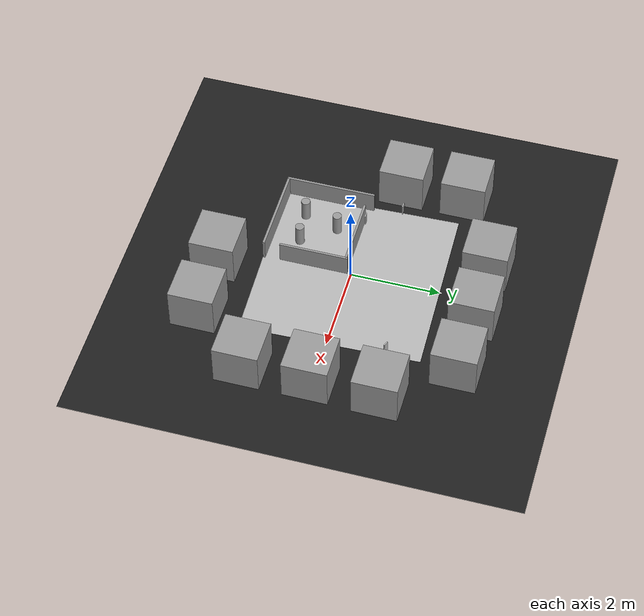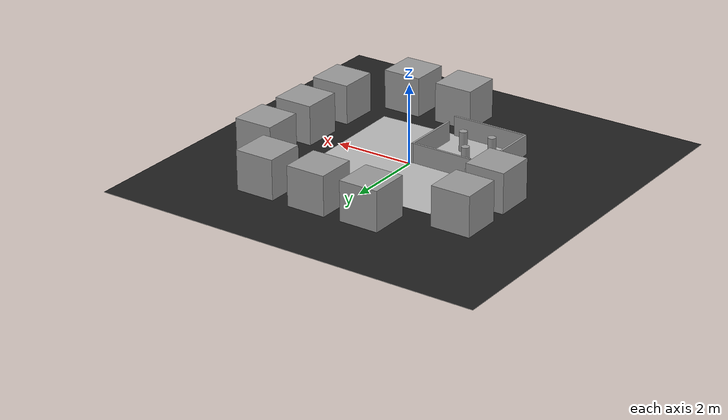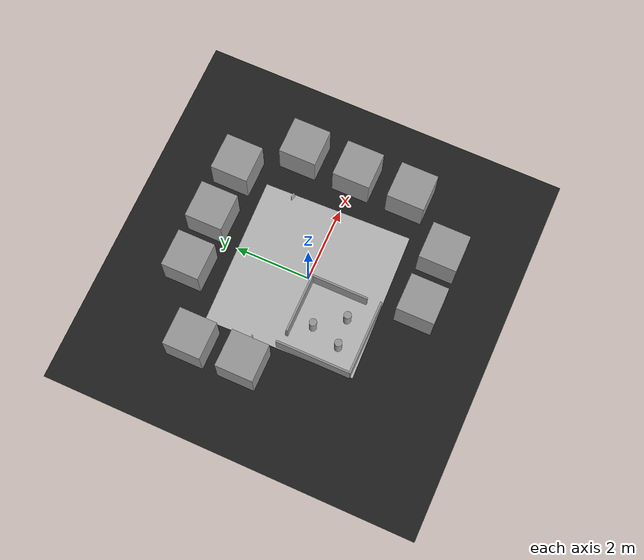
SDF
<sdf version="1.7">
 <world name="default">
  <scene>
   <ambient>0 0 0 1</ambient>
   <shadows>0</shadows>
   <grid>0</grid>
   <background>0.7 0.7 0.7 1</background>
  </scene>
  <model name="course">
   <static>1</static>
   <link name="course_link">
    <collision name="course_collision">
     <geometry><plane><normal>0 0 1</normal><size>4 4</size></plane></geometry>
     <surface><friction><ode><mu>100</mu><mu2>50</mu2></ode></friction></surface>
    </collision>
    <visual name="course_visual">
     <cast_shadows>0</cast_shadows>
     <geometry><plane><normal>0 0 1</normal><size>4 4</size></plane></geometry>
     <material>
      <script>
       <uri>model://turtlebot3_autorace/course/materials/scripts</uri>
       <uri>model://turtlebot3_autorace/course/materials/textures</uri>
       <name>course</name>
      </script>
     </material>
    </visual>
   </link>
   <pose>0 0 0 0 0 -1.54</pose>
  </model>
  <model name="traffic_parking">
   <static>1</static>
   <link name="box">
    <collision name="collision"><geometry><box><size>0.12 0.025 0.25</size></box></geometry></collision>
    <visual name="visual">
     <geometry><box><size>0.12 0.025 0.25</size></box></geometry>
     <material>
      <script>
       <uri>model://turtlebot3_autorace/traffic_parking/materials/scripts</uri>
       <uri>model://turtlebot3_autorace/traffic_parking/materials/textures</uri>
       <name>traffic_parking</name>
      </script>
     </material>
    </visual>
   </link>
   <pose>1.84 1.27 0.13 0 0 -0.356</pose>
  </model>
  <model name="traffic_tunnel">
   <pose>-1.544 -0.08 0.125 1e-06 2e-06 1.2e-05</pose>
   <link name="box">
    <collision name="collision"><geometry><box><size>0.12 0.025 0.25</size></box></geometry></collision>
    <visual name="visual">
     <geometry><box><size>0.12 0.025 0.25</size></box></geometry>
     <material>
      <script>
       <uri>model://turtlebot3_autorace/traffic_tunnel/materials/scripts</uri>
       <uri>model://turtlebot3_autorace/traffic_tunnel/materials/textures</uri>
       <name>traffic_tunnel</name>
      </script>
     </material>
    </visual>
    <inertial>
     <inertia><ixx>1</ixx><ixy>0</ixy><ixz>0</ixz><iyy>1</iyy><iyz>0</iyz><izz>1</izz></inertia>
     <mass>1</mass>
    </inertial>
   </link>
  </model>
  <model name="traffic_stop">
   <static>1</static>
   <link name="box">
    <collision name="collision"><geometry><box><size>0.12 0.025 0.25</size></box></geometry></collision>
    <visual name="visual">
     <geometry><box><size>0.12 0.025 0.25</size></box></geometry>
     <material>
      <script>
       <uri>model://turtlebot3_autorace/traffic_stop/materials/scripts</uri>
       <uri>model://turtlebot3_autorace/traffic_stop/materials/textures</uri>
       <name>traffic_stop</name>
      </script>
     </material>
    </visual>
   </link>
   <pose>-2.05 0.65 0.125 0 -0 0</pose>
  </model>
  <light name="sun" type="directional">
   <pose>0 0 10 0 -0 0</pose>
   <diffuse>0.8 0.8 0.8 1</diffuse>
   <specular>0.1 0.1 0.1 1</specular>
   <attenuation>
    <range>1000</range>
    <constant>0.9</constant>
    <linear>0.01</linear>
    <quadratic>0.001</quadratic>
   </attenuation>
   <direction>-0.5 0.5 -1</direction>
   <spot><inner_angle>0</inner_angle><outer_angle>0</outer_angle><falloff>0</falloff></spot>
  </light>
  <model name="ground2">
   <pose>0 0 -0.1 0 -0 0</pose>
   <static>1</static>
   <link name="ground">
    <collision name="ground_coll"><geometry><box><size>8 8 0.01</size></box></geometry></collision>
    <visual name="ground_vis">
     <geometry><box><size>10 10 0.01</size></box></geometry>
     <material>
      <script><uri>file://media/materials/scripts/gazebo.material</uri><name>Gazebo/FlatBlack</name></script>
     </material>
    </visual>
   </link>
  </model>
  <gravity>0 0 -9.8</gravity>
  <magnetic_field>6e-06 2.3e-05 -4.2e-05</magnetic_field>
  <atmosphere type="adiabatic"/>
  <physics name="default_physics" default="0" type="ode">
   <max_step_size>0.001</max_step_size>
   <real_time_factor>1</real_time_factor>
   <real_time_update_rate>1000</real_time_update_rate>
  </physics>
  <spherical_coordinates>
   <surface_model>EARTH_WGS84</surface_model>
   <latitude_deg>0</latitude_deg>
   <longitude_deg>0</longitude_deg>
   <elevation>0</elevation>
   <heading_deg>0</heading_deg>
  </spherical_coordinates>
  <light name="user_point_light_2" type="point">
   <pose>-0.948146 0.604519 1 0 -0 0</pose>
   <diffuse>0.5 0.5 0.5 1</diffuse>
   <specular>0.1 0.1 0.1 1</specular>
   <attenuation>
    <range>20</range>
    <constant>0.5</constant>
    <linear>0.01</linear>
    <quadratic>0.001</quadratic>
   </attenuation>
   <cast_shadows>0</cast_shadows>
   <direction>0 0 -1</direction>
   <spot><inner_angle>0</inner_angle><outer_angle>0</outer_angle><falloff>0</falloff></spot>
  </light>
  <light name="user_point_light_6" type="point">
   <pose>1.63854 1.69565 1 0 -0 0</pose>
   <diffuse>0.5 0.5 0.5 1</diffuse>
   <specular>0.1 0.1 0.1 1</specular>
   <attenuation>
    <range>20</range>
    <constant>0.5</constant>
    <linear>0.01</linear>
    <quadratic>0.001</quadratic>
   </attenuation>
   <cast_shadows>0</cast_shadows>
   <direction>0 0 -1</direction>
   <spot><inner_angle>0</inner_angle><outer_angle>0</outer_angle><falloff>0</falloff></spot>
  </light>
  <light name="user_point_light_7" type="point">
   <pose>0.42 -3.31 1 0 -0 0</pose>
   <diffuse>0.5 0.5 0.5 1</diffuse>
   <specular>0.1 0.1 0.1 1</specular>
   <attenuation>
    <range>20</range>
    <constant>0.5</constant>
    <linear>0.01</linear>
    <quadratic>0.001</quadratic>
   </attenuation>
   <cast_shadows>0</cast_shadows>
   <direction>0 0 -1</direction>
   <spot><inner_angle>0</inner_angle><outer_angle>0</outer_angle><falloff>0</falloff></spot>
  </light>
  <light name="user_point_light_8" type="point">
   <pose>-1.8 1.5 1 0 -0 0</pose>
   <diffuse>0.5 0.5 0.5 1</diffuse>
   <specular>0.1 0.1 0.1 1</specular>
   <attenuation>
    <range>20</range>
    <constant>0.5</constant>
    <linear>0.01</linear>
    <quadratic>0.001</quadratic>
   </attenuation>
   <cast_shadows>0</cast_shadows>
   <direction>0 0 -1</direction>
   <spot><inner_angle>0</inner_angle><outer_angle>0</outer_angle><falloff>0</falloff></spot>
  </light>
  <model name="tunnel_wall_3">
   <link name="Wall_12">
    <pose>-0.980783 0.049883 0 0 -0 1.5708</pose>
    <visual name="Wall_12_Visual">
     <pose>0 0 0.25 0 -0 0</pose>
     <geometry><box><size>2 0.05 0.5</size></box></geometry>
     <material>
      <script><uri>file://media/materials/scripts/gazebo.material</uri><name>Gazebo/Grey</name></script>
      <ambient>1 1 1 1</ambient>
      <diffuse>0.7 0.7 0.7 1</diffuse>
      <specular>0.01 0.01 0.01 1</specular>
      <emissive>0 0 0 1</emissive>
     </material>
    </visual>
    <collision name="Wall_12_Collision">
     <pose>0 0 0.25 0 -0 0</pose>
     <geometry><box><size>2 0.05 0.5</size></box></geometry>
     <surface>
      <friction>
       <ode><mu>1</mu><mu2>1</mu2><fdir1>0 0 0</fdir1><slip1>0</slip1><slip2>0</slip2></ode>
       <torsional>
        <coefficient>1</coefficient>
        <patch_radius>0</patch_radius>
        <surface_radius>0</surface_radius>
        <use_patch_radius>1</use_patch_radius>
        <ode><slip>0</slip></ode>
       </torsional>
      </friction>
      <bounce><restitution_coefficient>0</restitution_coefficient><threshold>1e+06</threshold></bounce>
      <contact>
       <collide_without_contact>0</collide_without_contact>
       <collide_without_contact_bitmask>1</collide_without_contact_bitmask>
       <collide_bitmask>1</collide_bitmask>
       <ode>
        <soft_cfm>0</soft_cfm>
        <soft_erp>0.2</soft_erp>
        <kp>1e+13</kp>
        <kd>1</kd>
        <max_vel>0.01</max_vel>
        <min_depth>0</min_depth>
       </ode>
       <bullet>
        <split_impulse>1</split_impulse>
        <split_impulse_penetration_threshold>-0.01</split_impulse_penetration_threshold>
        <soft_cfm>0</soft_cfm>
        <soft_erp>0.2</soft_erp>
        <kp>1e+13</kp>
        <kd>1</kd>
       </bullet>
      </contact>
     </surface>
    </collision>
   </link>
   <link name="Wall_14">
    <pose>0 -0.935438 0 0 -0 0</pose>
    <visual name="Wall_14_Visual">
     <pose>0 0 0.25 0 -0 0</pose>
     <geometry><box><size>2.00003 0.05 0.5</size></box></geometry>
     <material>
      <script><uri>file://media/materials/scripts/gazebo.material</uri><name>Gazebo/Grey</name></script>
      <ambient>1 1 1 1</ambient>
      <diffuse>0.7 0.7 0.7 1</diffuse>
      <specular>0.01 0.01 0.01 1</specular>
      <emissive>0 0 0 1</emissive>
     </material>
    </visual>
    <collision name="Wall_14_Collision">
     <pose>0 0 0.25 0 -0 0</pose>
     <geometry><box><size>2.00003 0.05 0.5</size></box></geometry>
     <surface>
      <friction>
       <ode><mu>1</mu><mu2>1</mu2><fdir1>0 0 0</fdir1><slip1>0</slip1><slip2>0</slip2></ode>
       <torsional>
        <coefficient>1</coefficient>
        <patch_radius>0</patch_radius>
        <surface_radius>0</surface_radius>
        <use_patch_radius>1</use_patch_radius>
        <ode><slip>0</slip></ode>
       </torsional>
      </friction>
      <bounce><restitution_coefficient>0</restitution_coefficient><threshold>1e+06</threshold></bounce>
      <contact>
       <collide_without_contact>0</collide_without_contact>
       <collide_without_contact_bitmask>1</collide_without_contact_bitmask>
       <collide_bitmask>1</collide_bitmask>
       <ode>
        <soft_cfm>0</soft_cfm>
        <soft_erp>0.2</soft_erp>
        <kp>1e+13</kp>
        <kd>1</kd>
        <max_vel>0.01</max_vel>
        <min_depth>0</min_depth>
       </ode>
       <bullet>
        <split_impulse>1</split_impulse>
        <split_impulse_penetration_threshold>-0.01</split_impulse_penetration_threshold>
        <soft_cfm>0</soft_cfm>
        <soft_erp>0.2</soft_erp>
        <kp>1e+13</kp>
        <kd>1</kd>
       </bullet>
      </contact>
     </surface>
    </collision>
   </link>
   <link name="Wall_16">
    <pose>0.943396 0.183669 0 0 -0 1.5708</pose>
    <inertial>
     <inertia><ixx>nan</ixx><ixy>0</ixy><ixz>0</ixz><iyy>nan</iyy><iyz>0</iyz><izz>nan</izz></inertia>
     <mass>0</mass>
    </inertial>
    <visual name="Wall_16_Visual">
     <pose>0 0 0.25 0 -0 0</pose>
     <geometry><box><size>1.53699 0.05 0.5</size></box></geometry>
     <material>
      <script><uri>file://media/materials/scripts/gazebo.material</uri><name>Gazebo/Grey</name></script>
      <ambient>1 1 1 1</ambient>
      <diffuse>0.7 0.7 0.7 1</diffuse>
      <specular>0.01 0.01 0.01 1</specular>
      <emissive>0 0 0 1</emissive>
     </material>
    </visual>
    <collision name="Wall_16_Collision">
     <pose>0 0 0.25 0 -0 0</pose>
     <geometry><box><size>1.53699 0.05 0.5</size></box></geometry>
     <surface>
      <friction>
       <ode><mu>1</mu><mu2>1</mu2><fdir1>0 0 0</fdir1><slip1>0</slip1><slip2>0</slip2></ode>
       <torsional>
        <coefficient>1</coefficient>
        <patch_radius>0</patch_radius>
        <surface_radius>0</surface_radius>
        <use_patch_radius>1</use_patch_radius>
        <ode><slip>0</slip></ode>
       </torsional>
      </friction>
      <bounce><restitution_coefficient>0</restitution_coefficient><threshold>1e+06</threshold></bounce>
      <contact>
       <collide_without_contact>0</collide_without_contact>
       <collide_without_contact_bitmask>1</collide_without_contact_bitmask>
       <collide_bitmask>1</collide_bitmask>
       <ode>
        <soft_cfm>0</soft_cfm>
        <soft_erp>0.2</soft_erp>
        <kp>1e+13</kp>
        <kd>1</kd>
        <max_vel>0.01</max_vel>
        <min_depth>0</min_depth>
       </ode>
       <bullet>
        <split_impulse>1</split_impulse>
        <split_impulse_penetration_threshold>-0.01</split_impulse_penetration_threshold>
        <soft_cfm>0</soft_cfm>
        <soft_erp>0.2</soft_erp>
        <kp>1e+13</kp>
        <kd>1</kd>
       </bullet>
      </contact>
     </surface>
    </collision>
   </link>
   <link name="Wall_17">
    <pose>0.15 0.915 0 0 -0 3.14159</pose>
    <visual name="Wall_17_Visual">
     <pose>0 0 0.25 0 -0 0</pose>
     <geometry><box><size>1.58 0.05 0.5</size></box></geometry>
     <material>
      <script><uri>file://media/materials/scripts/gazebo.material</uri><name>Gazebo/Grey</name></script>
      <ambient>1 1 1 1</ambient>
      <diffuse>0.7 0.7 0.7 1</diffuse>
      <specular>0.01 0.01 0.01 1</specular>
      <emissive>0 0 0 1</emissive>
     </material>
    </visual>
    <collision name="Wall_17_Collision">
     <pose>0 0 0.25 0 -0 0</pose>
     <geometry><box><size>1.58 0.05 0.5</size></box></geometry>
     <surface>
      <friction>
       <ode><mu>1</mu><mu2>1</mu2><fdir1>0 0 0</fdir1><slip1>0</slip1><slip2>0</slip2></ode>
       <torsional>
        <coefficient>1</coefficient>
        <patch_radius>0</patch_radius>
        <surface_radius>0</surface_radius>
        <use_patch_radius>1</use_patch_radius>
        <ode><slip>0</slip></ode>
       </torsional>
      </friction>
      <bounce><restitution_coefficient>0</restitution_coefficient><threshold>1e+06</threshold></bounce>
      <contact>
       <collide_without_contact>0</collide_without_contact>
       <collide_without_contact_bitmask>1</collide_without_contact_bitmask>
       <collide_bitmask>1</collide_bitmask>
       <ode>
        <soft_cfm>0</soft_cfm>
        <soft_erp>0.2</soft_erp>
        <kp>1e+13</kp>
        <kd>1</kd>
        <max_vel>0.01</max_vel>
        <min_depth>0</min_depth>
       </ode>
       <bullet>
        <split_impulse>1</split_impulse>
        <split_impulse_penetration_threshold>-0.01</split_impulse_penetration_threshold>
        <soft_cfm>0</soft_cfm>
        <soft_erp>0.2</soft_erp>
        <kp>1e+13</kp>
        <kd>1</kd>
       </bullet>
      </contact>
     </surface>
    </collision>
   </link>
   <static>1</static>
   <pose>-0.964697 -1.03574 0 0 -0 0</pose>
  </model>
  <model name="tunnel_occ_2_1">
   <link name="link_0_clone_clone">
    <pose>0.42322 -0.212034 0.25 0 -0 0</pose>
    <inertial>
     <mass>0.0416663</mass>
     <inertia>
      <ixx>0.00098188</ixx>
      <ixy>0</ixy>
      <ixz>0</ixz>
      <iyy>0.00098188</iyy>
      <iyz>0</iyz>
      <izz>0.00046751</izz>
     </inertia>
    </inertial>
    <visual name="visual">
     <geometry><cylinder><radius>0.1</radius><length>0.5</length></cylinder></geometry>
     <material>
      <lighting>1</lighting>
      <script><uri>file://media/materials/scripts/gazebo.material</uri><name>Gazebo/Grey</name></script>
      <ambient>0.3 0.3 0.3 1</ambient>
      <diffuse>0.7 0.7 0.7 1</diffuse>
      <specular>0.01 0.01 0.01 1</specular>
      <emissive>0 0 0 1</emissive>
      <shader type="pixel"><normal_map>__default__</normal_map></shader>
     </material>
    </visual>
    <collision name="collision">
     <geometry><cylinder><radius>0.1</radius><length>0.46418</length></cylinder></geometry>
     <surface>
      <friction>
       <ode><mu>1</mu><mu2>1</mu2><fdir1>0 0 0</fdir1><slip1>0</slip1><slip2>0</slip2></ode>
       <torsional>
        <coefficient>1</coefficient>
        <patch_radius>0</patch_radius>
        <surface_radius>0</surface_radius>
        <use_patch_radius>1</use_patch_radius>
        <ode><slip>0</slip></ode>
       </torsional>
      </friction>
      <bounce><restitution_coefficient>0</restitution_coefficient><threshold>1e+06</threshold></bounce>
      <contact>
       <collide_without_contact>0</collide_without_contact>
       <collide_without_contact_bitmask>1</collide_without_contact_bitmask>
       <collide_bitmask>1</collide_bitmask>
       <ode>
        <soft_cfm>0</soft_cfm>
        <soft_erp>0.2</soft_erp>
        <kp>1e+13</kp>
        <kd>1</kd>
        <max_vel>0.01</max_vel>
        <min_depth>0</min_depth>
       </ode>
       <bullet>
        <split_impulse>1</split_impulse>
        <split_impulse_penetration_threshold>-0.01</split_impulse_penetration_threshold>
        <soft_cfm>0</soft_cfm>
        <soft_erp>0.2</soft_erp>
        <kp>1e+13</kp>
        <kd>1</kd>
       </bullet>
      </contact>
     </surface>
    </collision>
   </link>
   <link name="link_0_clone_clone_clone">
    <pose>-0.323729 -0.287563 0.25 0 -0 0</pose>
    <inertial>
     <mass>0.0416663</mass>
     <inertia>
      <ixx>0.00098188</ixx>
      <ixy>0</ixy>
      <ixz>0</ixz>
      <iyy>0.00098188</iyy>
      <iyz>0</iyz>
      <izz>0.00046751</izz>
     </inertia>
    </inertial>
    <visual name="visual">
     <geometry><cylinder><radius>0.1</radius><length>0.5</length></cylinder></geometry>
     <material>
      <lighting>1</lighting>
      <script><uri>file://media/materials/scripts/gazebo.material</uri><name>Gazebo/Grey</name></script>
      <ambient>0.3 0.3 0.3 1</ambient>
      <diffuse>0.7 0.7 0.7 1</diffuse>
      <specular>0.01 0.01 0.01 1</specular>
      <emissive>0 0 0 1</emissive>
      <shader type="pixel"><normal_map>__default__</normal_map></shader>
     </material>
    </visual>
    <collision name="collision">
     <geometry><cylinder><radius>0.1</radius><length>0.46418</length></cylinder></geometry>
     <surface>
      <friction>
       <ode><mu>1</mu><mu2>1</mu2><fdir1>0 0 0</fdir1><slip1>0</slip1><slip2>0</slip2></ode>
       <torsional>
        <coefficient>1</coefficient>
        <patch_radius>0</patch_radius>
        <surface_radius>0</surface_radius>
        <use_patch_radius>1</use_patch_radius>
        <ode><slip>0</slip></ode>
       </torsional>
      </friction>
      <bounce><restitution_coefficient>0</restitution_coefficient><threshold>1e+06</threshold></bounce>
      <contact>
       <collide_without_contact>0</collide_without_contact>
       <collide_without_contact_bitmask>1</collide_without_contact_bitmask>
       <collide_bitmask>1</collide_bitmask>
       <ode>
        <soft_cfm>0</soft_cfm>
        <soft_erp>0.2</soft_erp>
        <kp>1e+13</kp>
        <kd>1</kd>
        <max_vel>0.01</max_vel>
        <min_depth>0</min_depth>
       </ode>
       <bullet>
        <split_impulse>1</split_impulse>
        <split_impulse_penetration_threshold>-0.01</split_impulse_penetration_threshold>
        <soft_cfm>0</soft_cfm>
        <soft_erp>0.2</soft_erp>
        <kp>1e+13</kp>
        <kd>1</kd>
       </bullet>
      </contact>
     </surface>
    </collision>
   </link>
   <link name="link_0_clone_clone_clone_clone">
    <pose>-0.099492 0.499594 0.25 0 -0 0</pose>
    <inertial>
     <mass>0.0416663</mass>
     <inertia>
      <ixx>0.00098188</ixx>
      <ixy>0</ixy>
      <ixz>0</ixz>
      <iyy>0.00098188</iyy>
      <iyz>0</iyz>
      <izz>0.00046751</izz>
     </inertia>
    </inertial>
    <visual name="visual">
     <geometry><cylinder><radius>0.1</radius><length>0.5</length></cylinder></geometry>
     <material>
      <lighting>1</lighting>
      <script><uri>file://media/materials/scripts/gazebo.material</uri><name>Gazebo/Grey</name></script>
      <ambient>0.3 0.3 0.3 1</ambient>
      <diffuse>0.7 0.7 0.7 1</diffuse>
      <specular>0.01 0.01 0.01 1</specular>
      <emissive>0 0 0 1</emissive>
      <shader type="pixel"><normal_map>__default__</normal_map></shader>
     </material>
    </visual>
    <collision name="collision">
     <geometry><cylinder><radius>0.1</radius><length>0.46418</length></cylinder></geometry>
     <surface>
      <friction>
       <ode><mu>1</mu><mu2>1</mu2><fdir1>0 0 0</fdir1><slip1>0</slip1><slip2>0</slip2></ode>
       <torsional>
        <coefficient>1</coefficient>
        <patch_radius>0</patch_radius>
        <surface_radius>0</surface_radius>
        <use_patch_radius>1</use_patch_radius>
        <ode><slip>0</slip></ode>
       </torsional>
      </friction>
      <bounce><restitution_coefficient>0</restitution_coefficient><threshold>1e+06</threshold></bounce>
      <contact>
       <collide_without_contact>0</collide_without_contact>
       <collide_without_contact_bitmask>1</collide_without_contact_bitmask>
       <collide_bitmask>1</collide_bitmask>
       <ode>
        <soft_cfm>0</soft_cfm>
        <soft_erp>0.2</soft_erp>
        <kp>1e+13</kp>
        <kd>1</kd>
        <max_vel>0.01</max_vel>
        <min_depth>0</min_depth>
       </ode>
       <bullet>
        <split_impulse>1</split_impulse>
        <split_impulse_penetration_threshold>-0.01</split_impulse_penetration_threshold>
        <soft_cfm>0</soft_cfm>
        <soft_erp>0.2</soft_erp>
        <kp>1e+13</kp>
        <kd>1</kd>
       </bullet>
      </contact>
     </surface>
    </collision>
   </link>
   <static>1</static>
   <pose>-1.04145 -1.12671 0 0 -0 0</pose>
  </model>
  <model name="unit_box">
   <pose>0.378808 -2.89735 0.499995 0 1e-05 0</pose>
   <link name="link">
    <inertial>
     <mass>1</mass>
     <inertia>
      <ixx>0.166667</ixx>
      <ixy>0</ixy>
      <ixz>0</ixz>
      <iyy>0.166667</iyy>
      <iyz>0</iyz>
      <izz>0.166667</izz>
     </inertia>
    </inertial>
    <collision name="collision"><geometry><box><size>1 1 1</size></box></geometry></collision>
    <visual name="visual">
     <geometry><box><size>1 1 1</size></box></geometry>
     <material>
      <script><name>Gazebo/Grey</name><uri>file://media/materials/scripts/gazebo.material</uri></script>
     </material>
    </visual>
   </link>
  </model>
  <model name="unit_box_0">
   <pose>3.03151 -1.53285 0.499995 0 -1e-05 0</pose>
   <link name="link">
    <inertial>
     <mass>1</mass>
     <inertia>
      <ixx>0.166667</ixx>
      <ixy>0</ixy>
      <ixz>0</ixz>
      <iyy>0.166667</iyy>
      <iyz>0</iyz>
      <izz>0.166667</izz>
     </inertia>
    </inertial>
    <collision name="collision"><geometry><box><size>1 1 1</size></box></geometry></collision>
    <visual name="visual">
     <geometry><box><size>1 1 1</size></box></geometry>
     <material>
      <script><name>Gazebo/Grey</name><uri>file://media/materials/scripts/gazebo.material</uri></script>
     </material>
    </visual>
   </link>
  </model>
  <model name="unit_box_1">
   <pose>1.85463 -2.88428 0.499995 0 -1e-05 0</pose>
   <link name="link">
    <inertial>
     <mass>1</mass>
     <inertia>
      <ixx>0.166667</ixx>
      <ixy>0</ixy>
      <ixz>0</ixz>
      <iyy>0.166667</iyy>
      <iyz>0</iyz>
      <izz>0.166667</izz>
     </inertia>
    </inertial>
    <collision name="collision"><geometry><box><size>1 1 1</size></box></geometry></collision>
    <visual name="visual">
     <geometry><box><size>1 1 1</size></box></geometry>
     <material>
      <script><name>Gazebo/Grey</name><uri>file://media/materials/scripts/gazebo.material</uri></script>
     </material>
    </visual>
   </link>
  </model>
  <model name="unit_box_2">
   <pose>3.02373 -0.039034 0.499995 1e-05 -0 0</pose>
   <link name="link">
    <inertial>
     <mass>1</mass>
     <inertia>
      <ixx>0.166667</ixx>
      <ixy>0</ixy>
      <ixz>0</ixz>
      <iyy>0.166667</iyy>
      <iyz>0</iyz>
      <izz>0.166667</izz>
     </inertia>
    </inertial>
    <collision name="collision"><geometry><box><size>1 1 1</size></box></geometry></collision>
    <visual name="visual">
     <geometry><box><size>1 1 1</size></box></geometry>
     <material>
      <script><name>Gazebo/Grey</name><uri>file://media/materials/scripts/gazebo.material</uri></script>
     </material>
    </visual>
   </link>
  </model>
  <model name="unit_box_3">
   <pose>3.04923 1.46591 0.499995 0 -1e-05 0</pose>
   <link name="link">
    <inertial>
     <mass>1</mass>
     <inertia>
      <ixx>0.166667</ixx>
      <ixy>0</ixy>
      <ixz>0</ixz>
      <iyy>0.166667</iyy>
      <iyz>0</iyz>
      <izz>0.166667</izz>
     </inertia>
    </inertial>
    <collision name="collision"><geometry><box><size>1 1 1</size></box></geometry></collision>
    <visual name="visual">
     <geometry><box><size>1 1 1</size></box></geometry>
     <material>
      <script><name>Gazebo/Grey</name><uri>file://media/materials/scripts/gazebo.material</uri></script>
     </material>
    </visual>
   </link>
  </model>
  <model name="unit_box_4">
   <pose>1.92971 2.86524 0.499995 1e-05 -0 0</pose>
   <link name="link">
    <inertial>
     <mass>1</mass>
     <inertia>
      <ixx>0.166667</ixx>
      <ixy>0</ixy>
      <ixz>0</ixz>
      <iyy>0.166667</iyy>
      <iyz>0</iyz>
      <izz>0.166667</izz>
     </inertia>
    </inertial>
    <collision name="collision"><geometry><box><size>1 1 1</size></box></geometry></collision>
    <visual name="visual">
     <geometry><box><size>1 1 1</size></box></geometry>
     <material>
      <script><name>Gazebo/Grey</name><uri>file://media/materials/scripts/gazebo.material</uri></script>
     </material>
    </visual>
   </link>
  </model>
  <model name="unit_box_5">
   <pose>0.482396 2.89481 0.499995 0 -1e-05 0</pose>
   <link name="link">
    <inertial>
     <mass>1</mass>
     <inertia>
      <ixx>0.166667</ixx>
      <ixy>0</ixy>
      <ixz>0</ixz>
      <iyy>0.166667</iyy>
      <iyz>0</iyz>
      <izz>0.166667</izz>
     </inertia>
    </inertial>
    <collision name="collision"><geometry><box><size>1 1 1</size></box></geometry></collision>
    <visual name="visual">
     <geometry><box><size>1 1 1</size></box></geometry>
     <material>
      <script><name>Gazebo/Grey</name><uri>file://media/materials/scripts/gazebo.material</uri></script>
     </material>
    </visual>
   </link>
  </model>
  <model name="unit_box_6">
   <pose>-0.933836 2.86025 0.499995 1e-05 -0 0</pose>
   <link name="link">
    <inertial>
     <mass>1</mass>
     <inertia>
      <ixx>0.166667</ixx>
      <ixy>0</ixy>
      <ixz>0</ixz>
      <iyy>0.166667</iyy>
      <iyz>0</iyz>
      <izz>0.166667</izz>
     </inertia>
    </inertial>
    <collision name="collision"><geometry><box><size>1 1 1</size></box></geometry></collision>
    <visual name="visual">
     <geometry><box><size>1 1 1</size></box></geometry>
     <material>
      <script><name>Gazebo/Grey</name><uri>file://media/materials/scripts/gazebo.material</uri></script>
     </material>
    </visual>
   </link>
  </model>
  <model name="unit_box_7">
   <pose>-2.74062 1.9442 0.499995 0 -1e-05 0</pose>
   <link name="link">
    <inertial>
     <mass>1</mass>
     <inertia>
      <ixx>0.166667</ixx>
      <ixy>0</ixy>
      <ixz>0</ixz>
      <iyy>0.166667</iyy>
      <iyz>0</iyz>
      <izz>0.166667</izz>
     </inertia>
    </inertial>
    <collision name="collision"><geometry><box><size>1 1 1</size></box></geometry></collision>
    <visual name="visual">
     <geometry><box><size>1 1 1</size></box></geometry>
     <material>
      <script><name>Gazebo/Grey</name><uri>file://media/materials/scripts/gazebo.material</uri></script>
     </material>
    </visual>
   </link>
  </model>
  <model name="unit_box_8">
   <pose>-2.72697 0.541477 0.499995 1e-05 -0 0</pose>
   <link name="link">
    <inertial>
     <mass>1</mass>
     <inertia>
      <ixx>0.166667</ixx>
      <ixy>0</ixy>
      <ixz>0</ixz>
      <iyy>0.166667</iyy>
      <iyz>0</iyz>
      <izz>0.166667</izz>
     </inertia>
    </inertial>
    <collision name="collision"><geometry><box><size>1 1 1</size></box></geometry></collision>
    <visual name="visual">
     <geometry><box><size>1 1 1</size></box></geometry>
     <material>
      <script><name>Gazebo/Grey</name><uri>file://media/materials/scripts/gazebo.material</uri></script>
     </material>
    </visual>
   </link>
  </model>
 </world>
</sdf>
